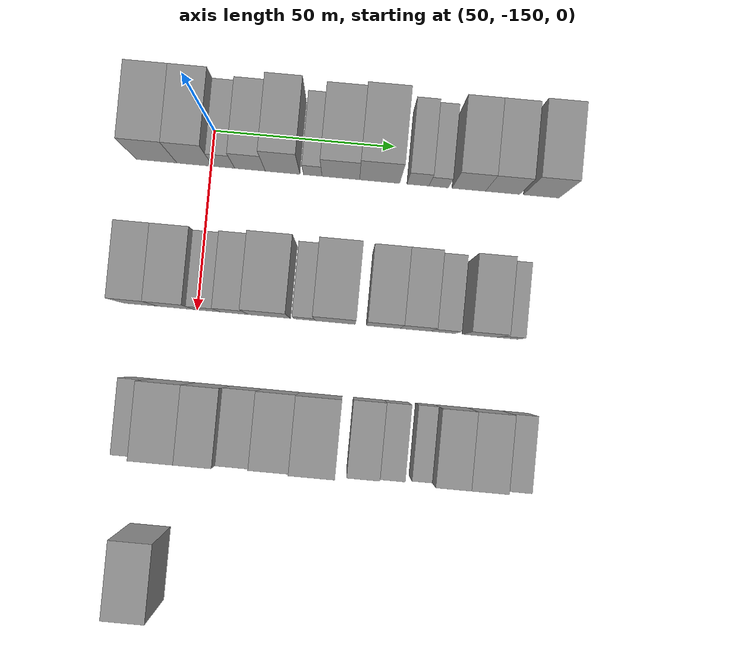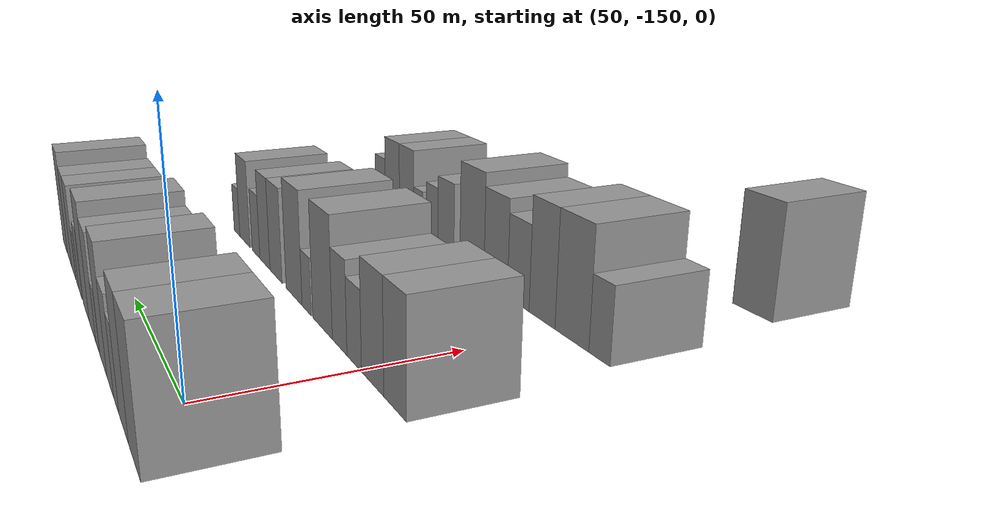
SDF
<sdf version="1.6">
 <world name="default">
  <model name="building_48">
   <static>1</static>
   <pose>50.0000 -165.0713 0 0.000000 0.000000 0.000000</pose>
   <link name="link">
    <pose>0 0 12.00 0 0 0</pose>
    <collision name="collision"><geometry><box><size>20.0000 11.2883 24.0000</size></box></geometry></collision>
    <visual name="visual">
     <cast_shadows>0</cast_shadows>
     <geometry><box><size>20.0000 11.2883 24.0000</size></box></geometry>
     <material>
      <script>
       <uri>model://grey_wall/materials/scripts</uri>
       <uri>model://grey_wall/materials/textures</uri>
       <name>vrc/grey_wall</name>
      </script>
     </material>
    </visual>
   </link>
  </model>
  <model name="building_49">
   <static>1</static>
   <pose>50.0000 -154.4397 0 0.000000 0.000000 0.000000</pose>
   <link name="link">
    <pose>0 0 12.00 0 0 0</pose>
    <collision name="collision"><geometry><box><size>20.0000 9.9748 24.0000</size></box></geometry></collision>
    <visual name="visual">
     <cast_shadows>0</cast_shadows>
     <geometry><box><size>20.0000 9.9748 24.0000</size></box></geometry>
     <material>
      <script>
       <uri>model://grey_wall/materials/scripts</uri>
       <uri>model://grey_wall/materials/textures</uri>
       <name>vrc/grey_wall</name>
      </script>
     </material>
    </visual>
   </link>
  </model>
  <model name="building_50">
   <static>1</static>
   <pose>50.0000 -146.4189 0 0.000000 0.000000 0.000000</pose>
   <link name="link">
    <pose>0 0 7.50 0 0 0</pose>
    <collision name="collision"><geometry><box><size>20.0000 6.0669 15.0000</size></box></geometry></collision>
    <visual name="visual">
     <cast_shadows>0</cast_shadows>
     <geometry><box><size>20.0000 6.0669 15.0000</size></box></geometry>
     <material>
      <script>
       <uri>model://grey_wall/materials/scripts</uri>
       <uri>model://grey_wall/materials/textures</uri>
       <name>vrc/grey_wall</name>
      </script>
     </material>
    </visual>
   </link>
  </model>
  <model name="building_51">
   <static>1</static>
   <pose>50.0000 -139.1425 0 0.000000 0.000000 0.000000</pose>
   <link name="link">
    <pose>0 0 9.00 0 0 0</pose>
    <collision name="collision"><geometry><box><size>20.0000 8.4860 18.0000</size></box></geometry></collision>
    <visual name="visual">
     <cast_shadows>0</cast_shadows>
     <geometry><box><size>20.0000 8.4860 18.0000</size></box></geometry>
     <material>
      <script>
       <uri>model://grey_wall/materials/scripts</uri>
       <uri>model://grey_wall/materials/textures</uri>
       <name>vrc/grey_wall</name>
      </script>
     </material>
    </visual>
   </link>
  </model>
  <model name="building_52">
   <static>1</static>
   <pose>50.0000 -130.0940 0 0.000000 0.000000 0.000000</pose>
   <link name="link">
    <pose>0 0 12.00 0 0 0</pose>
    <collision name="collision"><geometry><box><size>20.0000 9.6109 24.0000</size></box></geometry></collision>
    <visual name="visual">
     <cast_shadows>0</cast_shadows>
     <geometry><box><size>20.0000 9.6109 24.0000</size></box></geometry>
     <material>
      <script>
       <uri>model://grey_wall/materials/scripts</uri>
       <uri>model://grey_wall/materials/textures</uri>
       <name>vrc/grey_wall</name>
      </script>
     </material>
    </visual>
   </link>
  </model>
  <model name="building_53">
   <static>1</static>
   <pose>50.0000 -121.7255 0 0.000000 0.000000 0.000000</pose>
   <link name="link">
    <pose>0 0 6.00 0 0 0</pose>
    <collision name="collision"><geometry><box><size>20.0000 5.1261 12.0000</size></box></geometry></collision>
    <visual name="visual">
     <cast_shadows>0</cast_shadows>
     <geometry><box><size>20.0000 5.1261 12.0000</size></box></geometry>
     <material>
      <script>
       <uri>model://grey_wall/materials/scripts</uri>
       <uri>model://grey_wall/materials/textures</uri>
       <name>vrc/grey_wall</name>
      </script>
     </material>
    </visual>
   </link>
  </model>
  <model name="building_54">
   <static>1</static>
   <pose>50.0000 -113.9349 0 0.000000 0.000000 0.000000</pose>
   <link name="link">
    <pose>0 0 10.50 0 0 0</pose>
    <collision name="collision"><geometry><box><size>20.0000 10.4553 21.0000</size></box></geometry></collision>
    <visual name="visual">
     <cast_shadows>0</cast_shadows>
     <geometry><box><size>20.0000 10.4553 21.0000</size></box></geometry>
     <material>
      <script>
       <uri>model://grey_wall/materials/scripts</uri>
       <uri>model://grey_wall/materials/textures</uri>
       <name>vrc/grey_wall</name>
      </script>
     </material>
    </visual>
   </link>
  </model>
  <model name="building_55">
   <static>1</static>
   <pose>50.0000 -103.1495 0 0.000000 0.000000 0.000000</pose>
   <link name="link">
    <pose>0 0 12.00 0 0 0</pose>
    <collision name="collision"><geometry><box><size>20.0000 11.1154 24.0000</size></box></geometry></collision>
    <visual name="visual">
     <cast_shadows>0</cast_shadows>
     <geometry><box><size>20.0000 11.1154 24.0000</size></box></geometry>
     <material>
      <script>
       <uri>model://grey_wall/materials/scripts</uri>
       <uri>model://grey_wall/materials/textures</uri>
       <name>vrc/grey_wall</name>
      </script>
     </material>
    </visual>
   </link>
  </model>
  <model name="building_56">
   <static>1</static>
   <pose>50.0000 -92.5312 0 0.000000 0.000000 0.000000</pose>
   <link name="link">
    <pose>0 0 7.50 0 0 0</pose>
    <collision name="collision"><geometry><box><size>20.0000 6.1210 15.0000</size></box></geometry></collision>
    <visual name="visual">
     <cast_shadows>0</cast_shadows>
     <geometry><box><size>20.0000 6.1210 15.0000</size></box></geometry>
     <material>
      <script>
       <uri>model://grey_wall/materials/scripts</uri>
       <uri>model://grey_wall/materials/textures</uri>
       <name>vrc/grey_wall</name>
      </script>
     </material>
    </visual>
   </link>
  </model>
  <model name="building_57">
   <static>1</static>
   <pose>50.0000 -86.7811 0 0.000000 0.000000 0.000000</pose>
   <link name="link">
    <pose>0 0 6.00 0 0 0</pose>
    <collision name="collision"><geometry><box><size>20.0000 5.3792 12.0000</size></box></geometry></collision>
    <visual name="visual">
     <cast_shadows>0</cast_shadows>
     <geometry><box><size>20.0000 5.3792 12.0000</size></box></geometry>
     <material>
      <script>
       <uri>model://grey_wall/materials/scripts</uri>
       <uri>model://grey_wall/materials/textures</uri>
       <name>vrc/grey_wall</name>
      </script>
     </material>
    </visual>
   </link>
  </model>
  <model name="building_58">
   <static>1</static>
   <pose>50.0000 -78.4356 0 0.000000 0.000000 0.000000</pose>
   <link name="link">
    <pose>0 0 10.50 0 0 0</pose>
    <collision name="collision"><geometry><box><size>20.0000 9.3119 21.0000</size></box></geometry></collision>
    <visual name="visual">
     <cast_shadows>0</cast_shadows>
     <geometry><box><size>20.0000 9.3119 21.0000</size></box></geometry>
     <material>
      <script>
       <uri>model://grey_wall/materials/scripts</uri>
       <uri>model://grey_wall/materials/textures</uri>
       <name>vrc/grey_wall</name>
      </script>
     </material>
    </visual>
   </link>
  </model>
  <model name="building_59">
   <static>1</static>
   <pose>50.0000 -69.0138 0 0.000000 0.000000 0.000000</pose>
   <link name="link">
    <pose>0 0 10.50 0 0 0</pose>
    <collision name="collision"><geometry><box><size>20.0000 9.5317 21.0000</size></box></geometry></collision>
    <visual name="visual">
     <cast_shadows>0</cast_shadows>
     <geometry><box><size>20.0000 9.5317 21.0000</size></box></geometry>
     <material>
      <script>
       <uri>model://grey_wall/materials/scripts</uri>
       <uri>model://grey_wall/materials/textures</uri>
       <name>vrc/grey_wall</name>
      </script>
     </material>
    </visual>
   </link>
  </model>
  <model name="building_60">
   <static>1</static>
   <pose>50.0000 -58.2890 0 0.000000 0.000000 0.000000</pose>
   <link name="link">
    <pose>0 0 12.00 0 0 0</pose>
    <collision name="collision"><geometry><box><size>20.0000 9.9177 24.0000</size></box></geometry></collision>
    <visual name="visual">
     <cast_shadows>0</cast_shadows>
     <geometry><box><size>20.0000 9.9177 24.0000</size></box></geometry>
     <material>
      <script>
       <uri>model://grey_wall/materials/scripts</uri>
       <uri>model://grey_wall/materials/textures</uri>
       <name>vrc/grey_wall</name>
      </script>
     </material>
    </visual>
   </link>
  </model>
  <model name="building_189">
   <static>1</static>
   <pose>90.0000 -165.4227 0 0.000000 0.000000 0.000000</pose>
   <link name="link">
    <pose>0 0 10.50 0 0 0</pose>
    <collision name="collision"><geometry><box><size>20.0000 9.2691 21.0000</size></box></geometry></collision>
    <visual name="visual">
     <cast_shadows>0</cast_shadows>
     <geometry><box><size>20.0000 9.2691 21.0000</size></box></geometry>
     <material>
      <script>
       <uri>model://grey_wall/materials/scripts</uri>
       <uri>model://grey_wall/materials/textures</uri>
       <name>vrc/grey_wall</name>
      </script>
     </material>
    </visual>
   </link>
  </model>
  <model name="building_190">
   <static>1</static>
   <pose>90.0000 -155.7365 0 0.000000 0.000000 0.000000</pose>
   <link name="link">
    <pose>0 0 10.50 0 0 0</pose>
    <collision name="collision"><geometry><box><size>20.0000 10.1032 21.0000</size></box></geometry></collision>
    <visual name="visual">
     <cast_shadows>0</cast_shadows>
     <geometry><box><size>20.0000 10.1032 21.0000</size></box></geometry>
     <material>
      <script>
       <uri>model://grey_wall/materials/scripts</uri>
       <uri>model://grey_wall/materials/textures</uri>
       <name>vrc/grey_wall</name>
      </script>
     </material>
    </visual>
   </link>
  </model>
  <model name="building_191">
   <static>1</static>
   <pose>90.0000 -147.0865 0 0.000000 0.000000 0.000000</pose>
   <link name="link">
    <pose>0 0 7.50 0 0 0</pose>
    <collision name="collision"><geometry><box><size>20.0000 7.1969 15.0000</size></box></geometry></collision>
    <visual name="visual">
     <cast_shadows>0</cast_shadows>
     <geometry><box><size>20.0000 7.1969 15.0000</size></box></geometry>
     <material>
      <script>
       <uri>model://grey_wall/materials/scripts</uri>
       <uri>model://grey_wall/materials/textures</uri>
       <name>vrc/grey_wall</name>
      </script>
     </material>
    </visual>
   </link>
  </model>
  <model name="building_192">
   <static>1</static>
   <pose>90.0000 -139.5694 0 0.000000 0.000000 0.000000</pose>
   <link name="link">
    <pose>0 0 9.00 0 0 0</pose>
    <collision name="collision"><geometry><box><size>20.0000 7.8373 18.0000</size></box></geometry></collision>
    <visual name="visual">
     <cast_shadows>0</cast_shadows>
     <geometry><box><size>20.0000 7.8373 18.0000</size></box></geometry>
     <material>
      <script>
       <uri>model://grey_wall/materials/scripts</uri>
       <uri>model://grey_wall/materials/textures</uri>
       <name>vrc/grey_wall</name>
      </script>
     </material>
    </visual>
   </link>
  </model>
  <model name="building_193">
   <static>1</static>
   <pose>90.0000 -129.8937 0 0.000000 0.000000 0.000000</pose>
   <link name="link">
    <pose>0 0 12.00 0 0 0</pose>
    <collision name="collision"><geometry><box><size>20.0000 11.5139 24.0000</size></box></geometry></collision>
    <visual name="visual">
     <cast_shadows>0</cast_shadows>
     <geometry><box><size>20.0000 11.5139 24.0000</size></box></geometry>
     <material>
      <script>
       <uri>model://grey_wall/materials/scripts</uri>
       <uri>model://grey_wall/materials/textures</uri>
       <name>vrc/grey_wall</name>
      </script>
     </material>
    </visual>
   </link>
  </model>
  <model name="building_194">
   <static>1</static>
   <pose>90.0000 -120.2280 0 0.000000 0.000000 0.000000</pose>
   <link name="link">
    <pose>0 0 6.00 0 0 0</pose>
    <collision name="collision"><geometry><box><size>20.0000 5.8175 12.0000</size></box></geometry></collision>
    <visual name="visual">
     <cast_shadows>0</cast_shadows>
     <geometry><box><size>20.0000 5.8175 12.0000</size></box></geometry>
     <material>
      <script>
       <uri>model://grey_wall/materials/scripts</uri>
       <uri>model://grey_wall/materials/textures</uri>
       <name>vrc/grey_wall</name>
      </script>
     </material>
    </visual>
   </link>
  </model>
  <model name="building_195">
   <static>1</static>
   <pose>90.0000 -111.7917 0 0.000000 0.000000 0.000000</pose>
   <link name="link">
    <pose>0 0 12.00 0 0 0</pose>
    <collision name="collision"><geometry><box><size>20.0000 11.0552 24.0000</size></box></geometry></collision>
    <visual name="visual">
     <cast_shadows>0</cast_shadows>
     <geometry><box><size>20.0000 11.0552 24.0000</size></box></geometry>
     <material>
      <script>
       <uri>model://grey_wall/materials/scripts</uri>
       <uri>model://grey_wall/materials/textures</uri>
       <name>vrc/grey_wall</name>
      </script>
     </material>
    </visual>
   </link>
  </model>
  <model name="building_196">
   <static>1</static>
   <pose>90.0000 -98.5893 0 0.000000 0.000000 0.000000</pose>
   <link name="link">
    <pose>0 0 10.50 0 0 0</pose>
    <collision name="collision"><geometry><box><size>20.0000 9.3495 21.0000</size></box></geometry></collision>
    <visual name="visual">
     <cast_shadows>0</cast_shadows>
     <geometry><box><size>20.0000 9.3495 21.0000</size></box></geometry>
     <material>
      <script>
       <uri>model://grey_wall/materials/scripts</uri>
       <uri>model://grey_wall/materials/textures</uri>
       <name>vrc/grey_wall</name>
      </script>
     </material>
    </visual>
   </link>
  </model>
  <model name="building_197">
   <static>1</static>
   <pose>90.0000 -89.7115 0 0.000000 0.000000 0.000000</pose>
   <link name="link">
    <pose>0 0 10.50 0 0 0</pose>
    <collision name="collision"><geometry><box><size>20.0000 8.4060 21.0000</size></box></geometry></collision>
    <visual name="visual">
     <cast_shadows>0</cast_shadows>
     <geometry><box><size>20.0000 8.4060 21.0000</size></box></geometry>
     <material>
      <script>
       <uri>model://grey_wall/materials/scripts</uri>
       <uri>model://grey_wall/materials/textures</uri>
       <name>vrc/grey_wall</name>
      </script>
     </material>
    </visual>
   </link>
  </model>
  <model name="building_198">
   <static>1</static>
   <pose>90.0000 -82.1200 0 0.000000 0.000000 0.000000</pose>
   <link name="link">
    <pose>0 0 7.50 0 0 0</pose>
    <collision name="collision"><geometry><box><size>20.0000 6.7771 15.0000</size></box></geometry></collision>
    <visual name="visual">
     <cast_shadows>0</cast_shadows>
     <geometry><box><size>20.0000 6.7771 15.0000</size></box></geometry>
     <material>
      <script>
       <uri>model://grey_wall/materials/scripts</uri>
       <uri>model://grey_wall/materials/textures</uri>
       <name>vrc/grey_wall</name>
      </script>
     </material>
    </visual>
   </link>
  </model>
  <model name="building_199">
   <static>1</static>
   <pose>90.0000 -71.8998 0 0.000000 0.000000 0.000000</pose>
   <link name="link">
    <pose>0 0 10.50 0 0 0</pose>
    <collision name="collision"><geometry><box><size>20.0000 9.6631 21.0000</size></box></geometry></collision>
    <visual name="visual">
     <cast_shadows>0</cast_shadows>
     <geometry><box><size>20.0000 9.6631 21.0000</size></box></geometry>
     <material>
      <script>
       <uri>model://grey_wall/materials/scripts</uri>
       <uri>model://grey_wall/materials/textures</uri>
       <name>vrc/grey_wall</name>
      </script>
     </material>
    </visual>
   </link>
  </model>
  <model name="building_200">
   <static>1</static>
   <pose>90.0000 -64.2052 0 0.000000 0.000000 0.000000</pose>
   <link name="link">
    <pose>0 0 6.00 0 0 0</pose>
    <collision name="collision"><geometry><box><size>20.0000 5.7262 12.0000</size></box></geometry></collision>
    <visual name="visual">
     <cast_shadows>0</cast_shadows>
     <geometry><box><size>20.0000 5.7262 12.0000</size></box></geometry>
     <material>
      <script>
       <uri>model://grey_wall/materials/scripts</uri>
       <uri>model://grey_wall/materials/textures</uri>
       <name>vrc/grey_wall</name>
      </script>
     </material>
    </visual>
   </link>
  </model>
  <model name="building_327">
   <static>1</static>
   <pose>130.0000 -163.1254 0 0.000000 0.000000 0.000000</pose>
   <link name="link">
    <pose>0 0 7.50 0 0 0</pose>
    <collision name="collision"><geometry><box><size>20.0000 6.5968 15.0000</size></box></geometry></collision>
    <visual name="visual">
     <cast_shadows>0</cast_shadows>
     <geometry><box><size>20.0000 6.5968 15.0000</size></box></geometry>
     <material>
      <script>
       <uri>model://grey_wall/materials/scripts</uri>
       <uri>model://grey_wall/materials/textures</uri>
       <name>vrc/grey_wall</name>
      </script>
     </material>
    </visual>
   </link>
  </model>
  <model name="building_328">
   <static>1</static>
   <pose>130.0000 -154.1290 0 0.000000 0.000000 0.000000</pose>
   <link name="link">
    <pose>0 0 12.00 0 0 0</pose>
    <collision name="collision"><geometry><box><size>20.0000 11.3960 24.0000</size></box></geometry></collision>
    <visual name="visual">
     <cast_shadows>0</cast_shadows>
     <geometry><box><size>20.0000 11.3960 24.0000</size></box></geometry>
     <material>
      <script>
       <uri>model://grey_wall/materials/scripts</uri>
       <uri>model://grey_wall/materials/textures</uri>
       <name>vrc/grey_wall</name>
      </script>
     </material>
    </visual>
   </link>
  </model>
  <model name="building_329">
   <static>1</static>
   <pose>130.0000 -143.6059 0 0.000000 0.000000 0.000000</pose>
   <link name="link">
    <pose>0 0 12.00 0 0 0</pose>
    <collision name="collision"><geometry><box><size>20.0000 9.6503 24.0000</size></box></geometry></collision>
    <visual name="visual">
     <cast_shadows>0</cast_shadows>
     <geometry><box><size>20.0000 9.6503 24.0000</size></box></geometry>
     <material>
      <script>
       <uri>model://grey_wall/materials/scripts</uri>
       <uri>model://grey_wall/materials/textures</uri>
       <name>vrc/grey_wall</name>
      </script>
     </material>
    </visual>
   </link>
  </model>
  <model name="building_330">
   <static>1</static>
   <pose>130.0000 -134.3958 0 0.000000 0.000000 0.000000</pose>
   <link name="link">
    <pose>0 0 9.00 0 0 0</pose>
    <collision name="collision"><geometry><box><size>20.0000 8.7698 18.0000</size></box></geometry></collision>
    <visual name="visual">
     <cast_shadows>0</cast_shadows>
     <geometry><box><size>20.0000 8.7698 18.0000</size></box></geometry>
     <material>
      <script>
       <uri>model://grey_wall/materials/scripts</uri>
       <uri>model://grey_wall/materials/textures</uri>
       <name>vrc/grey_wall</name>
      </script>
     </material>
    </visual>
   </link>
  </model>
  <model name="building_331">
   <static>1</static>
   <pose>130.0000 -124.8278 0 0.000000 0.000000 0.000000</pose>
   <link name="link">
    <pose>0 0 10.50 0 0 0</pose>
    <collision name="collision"><geometry><box><size>20.0000 10.3663 21.0000</size></box></geometry></collision>
    <visual name="visual">
     <cast_shadows>0</cast_shadows>
     <geometry><box><size>20.0000 10.3663 21.0000</size></box></geometry>
     <material>
      <script>
       <uri>model://grey_wall/materials/scripts</uri>
       <uri>model://grey_wall/materials/textures</uri>
       <name>vrc/grey_wall</name>
      </script>
     </material>
    </visual>
   </link>
  </model>
  <model name="building_332">
   <static>1</static>
   <pose>130.0000 -113.8244 0 0.000000 0.000000 0.000000</pose>
   <link name="link">
    <pose>0 0 12.00 0 0 0</pose>
    <collision name="collision"><geometry><box><size>20.0000 11.6403 24.0000</size></box></geometry></collision>
    <visual name="visual">
     <cast_shadows>0</cast_shadows>
     <geometry><box><size>20.0000 11.6403 24.0000</size></box></geometry>
     <material>
      <script>
       <uri>model://grey_wall/materials/scripts</uri>
       <uri>model://grey_wall/materials/textures</uri>
       <name>vrc/grey_wall</name>
      </script>
     </material>
    </visual>
   </link>
  </model>
  <model name="building_333">
   <static>1</static>
   <pose>130.0000 -100.7300 0 0.000000 0.000000 0.000000</pose>
   <link name="link">
    <pose>0 0 9.00 0 0 0</pose>
    <collision name="collision"><geometry><box><size>20.0000 8.5486 18.0000</size></box></geometry></collision>
    <visual name="visual">
     <cast_shadows>0</cast_shadows>
     <geometry><box><size>20.0000 8.5486 18.0000</size></box></geometry>
     <material>
      <script>
       <uri>model://grey_wall/materials/scripts</uri>
       <uri>model://grey_wall/materials/textures</uri>
       <name>vrc/grey_wall</name>
      </script>
     </material>
    </visual>
   </link>
  </model>
  <model name="building_334">
   <static>1</static>
   <pose>130.0000 -93.1332 0 0.000000 0.000000 0.000000</pose>
   <link name="link">
    <pose>0 0 7.50 0 0 0</pose>
    <collision name="collision"><geometry><box><size>20.0000 6.6448 15.0000</size></box></geometry></collision>
    <visual name="visual">
     <cast_shadows>0</cast_shadows>
     <geometry><box><size>20.0000 6.6448 15.0000</size></box></geometry>
     <material>
      <script>
       <uri>model://grey_wall/materials/scripts</uri>
       <uri>model://grey_wall/materials/textures</uri>
       <name>vrc/grey_wall</name>
      </script>
     </material>
    </visual>
   </link>
  </model>
  <model name="building_335">
   <static>1</static>
   <pose>130.0000 -85.1421 0 0.000000 0.000000 0.000000</pose>
   <link name="link">
    <pose>0 0 6.00 0 0 0</pose>
    <collision name="collision"><geometry><box><size>20.0000 5.3374 12.0000</size></box></geometry></collision>
    <visual name="visual">
     <cast_shadows>0</cast_shadows>
     <geometry><box><size>20.0000 5.3374 12.0000</size></box></geometry>
     <material>
      <script>
       <uri>model://grey_wall/materials/scripts</uri>
       <uri>model://grey_wall/materials/textures</uri>
       <name>vrc/grey_wall</name>
      </script>
     </material>
    </visual>
   </link>
  </model>
  <model name="building_336">
   <static>1</static>
   <pose>130.0000 -77.9403 0 0.000000 0.000000 0.000000</pose>
   <link name="link">
    <pose>0 0 10.50 0 0 0</pose>
    <collision name="collision"><geometry><box><size>20.0000 9.0662 21.0000</size></box></geometry></collision>
    <visual name="visual">
     <cast_shadows>0</cast_shadows>
     <geometry><box><size>20.0000 9.0662 21.0000</size></box></geometry>
     <material>
      <script>
       <uri>model://grey_wall/materials/scripts</uri>
       <uri>model://grey_wall/materials/textures</uri>
       <name>vrc/grey_wall</name>
      </script>
     </material>
    </visual>
   </link>
  </model>
  <model name="building_337">
   <static>1</static>
   <pose>130.0000 -68.6315 0 0.000000 0.000000 0.000000</pose>
   <link name="link">
    <pose>0 0 10.50 0 0 0</pose>
    <collision name="collision"><geometry><box><size>20.0000 9.5514 21.0000</size></box></geometry></collision>
    <visual name="visual">
     <cast_shadows>0</cast_shadows>
     <geometry><box><size>20.0000 9.5514 21.0000</size></box></geometry>
     <material>
      <script>
       <uri>model://grey_wall/materials/scripts</uri>
       <uri>model://grey_wall/materials/textures</uri>
       <name>vrc/grey_wall</name>
      </script>
     </material>
    </visual>
   </link>
  </model>
  <model name="building_338">
   <static>1</static>
   <pose>130.0000 -60.3538 0 0.000000 0.000000 0.000000</pose>
   <link name="link">
    <pose>0 0 7.50 0 0 0</pose>
    <collision name="collision"><geometry><box><size>20.0000 7.0039 15.0000</size></box></geometry></collision>
    <visual name="visual">
     <cast_shadows>0</cast_shadows>
     <geometry><box><size>20.0000 7.0039 15.0000</size></box></geometry>
     <material>
      <script>
       <uri>model://grey_wall/materials/scripts</uri>
       <uri>model://grey_wall/materials/textures</uri>
       <name>vrc/grey_wall</name>
      </script>
     </material>
    </visual>
   </link>
  </model>
  <model name="building_468">
   <static>1</static>
   <pose>170.0000 -157.2032 0 0.000000 0.000000 0.000000</pose>
   <link name="link">
    <pose>0 0 12.00 0 0 0</pose>
    <collision name="collision"><geometry><box><size>20.0000 11.1525 24.0000</size></box></geometry></collision>
    <visual name="visual">
     <cast_shadows>0</cast_shadows>
     <geometry><box><size>20.0000 11.1525 24.0000</size></box></geometry>
     <material>
      <script>
       <uri>model://grey_wall/materials/scripts</uri>
       <uri>model://grey_wall/materials/textures</uri>
       <name>vrc/grey_wall</name>
      </script>
     </material>
    </visual>
   </link>
  </model>
 </world>
</sdf>
